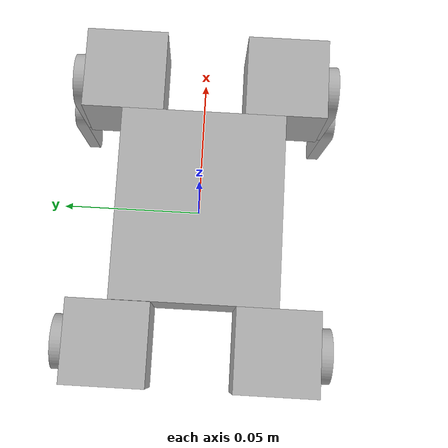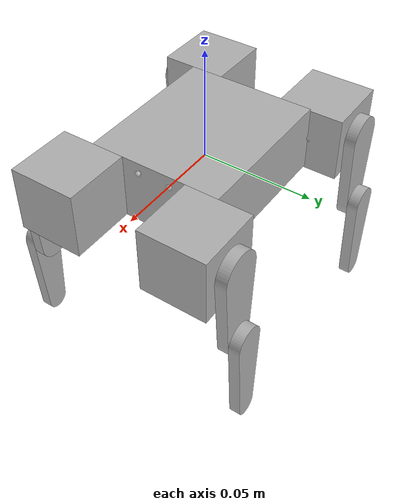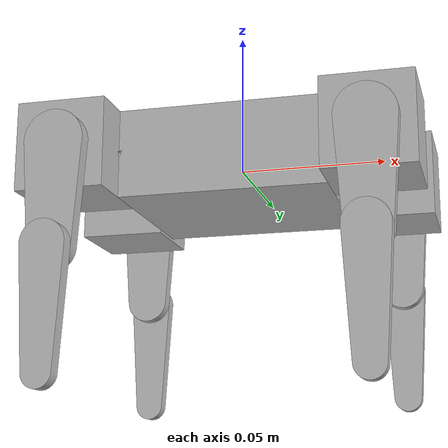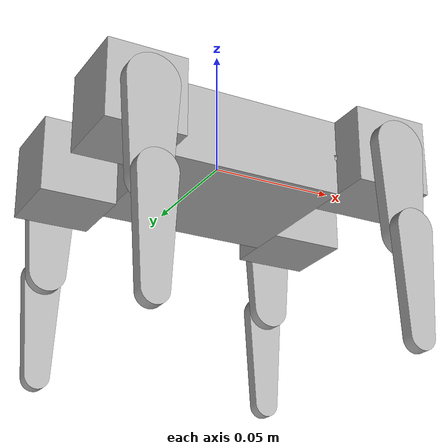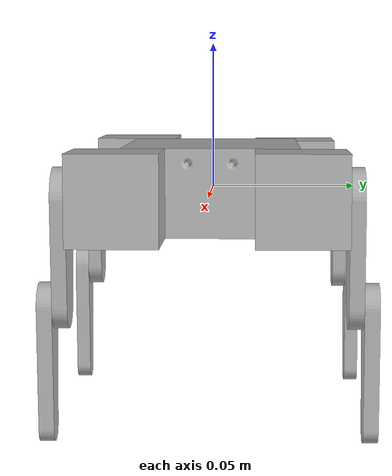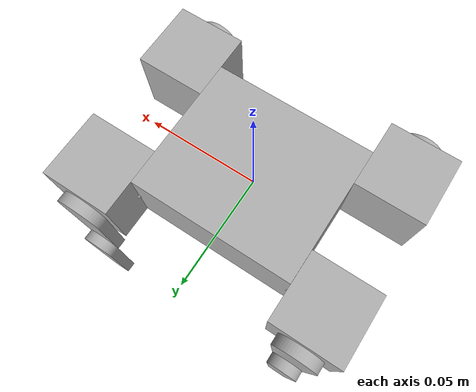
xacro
<?xml version="1.0" ?>
<robot name="q_dot_02" xmlns:xacro="http://www.ros.org/wiki/xacro">

<xacro:include filename="$(find q_dot_02_description)/urdf/materials.xacro" />
<xacro:include filename="$(find q_dot_02_description)/urdf/q_dot_02.trans" />
<xacro:include filename="$(find q_dot_02_description)/urdf/q_dot_02.gazebo" />

<link name="base_link">
  <inertial>
    <origin rpy="0 0 0" xyz="-3.749856284860472e-06 -9.02420120018054e-18 -1.093119461551725e-06"/>
    <mass value="0.9889425737724369"/>
    <inertia ixx="0.000371" ixy="-0.0" ixz="0.0" iyy="0.000478" iyz="-0.0" izz="0.0007"/>
  </inertial>
  <visual>
    <origin rpy="0 0 0" xyz="0 0 0"/>
    <geometry>
      <mesh filename="package://q_dot_02_description/meshes/base_link.stl" scale="0.001 0.001 0.001"/>
    </geometry>
    <material name="silver"/>
  </visual>
  <collision>
    <origin rpy="0 0 0" xyz="0 0 0"/>
    <geometry>
      <mesh filename="package://q_dot_02_description/meshes/base_link.stl" scale="0.001 0.001 0.001"/>
    </geometry>
  </collision>
</link>

<link name="rf_hip_link_1">
  <inertial>
    <origin rpy="0 0 0" xyz="0.015001687347942105 1.734723475976807e-17 0.0"/>
    <mass value="0.21192533849766937"/>
    <inertia ixx="1.0" ixy="0.0" ixz="0.0" iyy="1.0" iyz="0.0" izz="1.0" />
  </inertial>
  <visual>
    <origin rpy="0 0 0" xyz="-0.035 0.03 -0.0"/>
    <geometry>
      <mesh filename="package://q_dot_02_description/meshes/rf_hip_link_1.stl" scale="0.001 0.001 0.001"/>
    </geometry>
    <material name="silver"/>
  </visual>
  <collision>
    <origin rpy="0 0 0" xyz="-0.035 0.03 -0.0"/>
    <geometry>
      <mesh filename="package://q_dot_02_description/meshes/rf_hip_link_1.stl" scale="0.001 0.001 0.001"/>
    </geometry>
  </collision>
</link>

<link name="lf_hip_link_1">
  <inertial>
    <origin rpy="0 0 0" xyz="0.015001687347942098 1.734723475976807e-17 -2.6319460028976815e-18"/>
    <mass value="0.2119253384976692"/>
    <inertia ixx="1.0" ixy="0.0" ixz="0.0" iyy="1.0" iyz="0.0" izz="1.0" />
  </inertial>
  <visual>
    <origin rpy="0 0 0" xyz="-0.035 -0.03 -0.0"/>
    <geometry>
      <mesh filename="package://q_dot_02_description/meshes/lf_hip_link_1.stl" scale="0.001 0.001 0.001"/>
    </geometry>
    <material name="silver"/>
  </visual>
  <collision>
    <origin rpy="0 0 0" xyz="-0.035 -0.03 -0.0"/>
    <geometry>
      <mesh filename="package://q_dot_02_description/meshes/lf_hip_link_1.stl" scale="0.001 0.001 0.001"/>
    </geometry>
  </collision>
</link>

<link name="lh_hip_link_1">
  <inertial>
    <origin rpy="0 0 0" xyz="-0.015001687347942105 -2.42861286636753e-17 3.469446951953614e-18"/>
    <mass value="0.2119253384976694"/>
    <inertia ixx="1.0" ixy="0.0" ixz="0.0" iyy="1.0" iyz="0.0" izz="1.0" />
  </inertial>
  <visual>
    <origin rpy="0 0 0" xyz="0.035 -0.03 0.001"/>
    <geometry>
      <mesh filename="package://q_dot_02_description/meshes/lh_hip_link_1.stl" scale="0.001 0.001 0.001"/>
    </geometry>
    <material name="silver"/>
  </visual>
  <collision>
    <origin rpy="0 0 0" xyz="0.035 -0.03 0.001"/>
    <geometry>
      <mesh filename="package://q_dot_02_description/meshes/lh_hip_link_1.stl" scale="0.001 0.001 0.001"/>
    </geometry>
  </collision>
</link>

<link name="rh_hip_link_1">
  <inertial>
    <origin rpy="0 0 0" xyz="-0.015001687347942105 -1.734723475976807e-17 0.0"/>
    <mass value="0.21192533849766917"/>
    <inertia ixx="1.0" ixy="0.0" ixz="0.0" iyy="1.0" iyz="0.0" izz="1.0" />
  </inertial>
  <visual>
    <origin rpy="0 0 0" xyz="0.035 0.03 -0.0"/>
    <geometry>
      <mesh filename="package://q_dot_02_description/meshes/rh_hip_link_1.stl" scale="0.001 0.001 0.001"/>
    </geometry>
    <material name="silver"/>
  </visual>
  <collision>
    <origin rpy="0 0 0" xyz="0.035 0.03 -0.0"/>
    <geometry>
      <mesh filename="package://q_dot_02_description/meshes/rh_hip_link_1.stl" scale="0.001 0.001 0.001"/>
    </geometry>
  </collision>
</link>

<link name="rf_upper_leg_link_1">
  <inertial>
    <origin rpy="0 0 0" xyz="0.0 -0.0025000000000000022 -0.015060554087736015"/>
    <mass value="0.03370014250693511"/>
    <inertia ixx="1.0" ixy="0.0" ixz="0.0" iyy="1.0" iyz="0.0" izz="1.0" />
  </inertial>
  <visual>
    <origin rpy="0 0 0" xyz="-0.05 0.045 -0.0"/>
    <geometry>
      <mesh filename="package://q_dot_02_description/meshes/rf_upper_leg_link_1.stl" scale="0.001 0.001 0.001"/>
    </geometry>
    <material name="silver"/>
  </visual>
  <collision>
    <origin rpy="0 0 0" xyz="-0.05 0.045 -0.0"/>
    <geometry>
      <mesh filename="package://q_dot_02_description/meshes/rf_upper_leg_link_1.stl" scale="0.001 0.001 0.001"/>
    </geometry>
  </collision>
</link>

<link name="rf_lower_leg_link_1">
  <inertial>
    <origin rpy="0 0 0" xyz="0.0 -0.0024999999999999953 -0.01706099375174222"/>
    <mass value="0.02467231228210367"/>
    <inertia ixx="1.0" ixy="0.0" ixz="0.0" iyy="1.0" iyz="0.0" izz="1.0" />
  </inertial>
  <visual>
    <origin rpy="0 0 0" xyz="-0.05 0.05 0.035"/>
    <geometry>
      <mesh filename="package://q_dot_02_description/meshes/rf_lower_leg_link_1.stl" scale="0.001 0.001 0.001"/>
    </geometry>
    <material name="silver"/>
  </visual>
  <collision>
    <origin rpy="0 0 0" xyz="-0.05 0.05 0.035"/>
    <geometry>
      <mesh filename="package://q_dot_02_description/meshes/rf_lower_leg_link_1.stl" scale="0.001 0.001 0.001"/>
    </geometry>
  </collision>
</link>

<!-- RF FOOT -->
<link name="rf_foot_link" />
<!-- RF FOOT -->

<link name="lf_upper_leg_link_1">
  <inertial>
    <origin rpy="0 0 0" xyz="0.0 0.002500000000000009 -0.015060554087736"/>
    <mass value="0.033700142506935094"/>
    <inertia ixx="1.0" ixy="0.0" ixz="0.0" iyy="1.0" iyz="0.0" izz="1.0" />
  </inertial>
  <visual>
    <origin rpy="0 0 0" xyz="-0.05 -0.045 -0.0"/>
    <geometry>
      <mesh filename="package://q_dot_02_description/meshes/lf_upper_leg_link_1.stl" scale="0.001 0.001 0.001"/>
    </geometry>
    <material name="silver"/>
  </visual>
  <collision>
    <origin rpy="0 0 0" xyz="-0.05 -0.045 -0.0"/>
    <geometry>
      <mesh filename="package://q_dot_02_description/meshes/lf_upper_leg_link_1.stl" scale="0.001 0.001 0.001"/>
    </geometry>
  </collision>
</link>

<link name="lf_lower_leg_link_1">
  <inertial>
    <origin rpy="0 0 0" xyz="-2.0816681711721685e-17 0.002500000000000009 -0.017060993751742214"/>
    <mass value="0.024672312282103682"/>
    <inertia ixx="1.0" ixy="0.0" ixz="0.0" iyy="1.0" iyz="0.0" izz="1.0" />
  </inertial>
  <visual>
    <origin rpy="0 0 0" xyz="-0.05 -0.05 0.035"/>
    <geometry>
      <mesh filename="package://q_dot_02_description/meshes/lf_lower_leg_link_1.stl" scale="0.001 0.001 0.001"/>
    </geometry>
    <material name="silver"/>
  </visual>
  <collision>
    <origin rpy="0 0 0" xyz="-0.05 -0.05 0.035"/>
    <geometry>
      <mesh filename="package://q_dot_02_description/meshes/lf_lower_leg_link_1.stl" scale="0.001 0.001 0.001"/>
    </geometry>
  </collision>
</link>

<!-- LF FOOT -->
<link name="lf_foot_link" />
<!-- LF FOOT -->

<link name="lh_upper_leg_link_1">
  <inertial>
    <origin rpy="0 0 0" xyz="-3.469446951953614e-17 0.0024999999999999953 -0.015060554087736003"/>
    <mass value="0.0337001425069351"/>
    <inertia ixx="1.0" ixy="0.0" ixz="0.0" iyy="1.0" iyz="0.0" izz="1.0" />
  </inertial>
  <visual>
    <origin rpy="0 0 0" xyz="0.05 -0.045 0.001"/>
    <geometry>
      <mesh filename="package://q_dot_02_description/meshes/lh_upper_leg_link_1.stl" scale="0.001 0.001 0.001"/>
    </geometry>
    <material name="silver"/>
  </visual>
  <collision>
    <origin rpy="0 0 0" xyz="0.05 -0.045 0.001"/>
    <geometry>
      <mesh filename="package://q_dot_02_description/meshes/lh_upper_leg_link_1.stl" scale="0.001 0.001 0.001"/>
    </geometry>
  </collision>
</link>

<link name="lh_lower_leg_link_1">
  <inertial>
    <origin rpy="0 0 0" xyz="-2.0816681711721685e-17 0.0024999999999999883 -0.0170609937517422"/>
    <mass value="0.02467231228210367"/>
    <inertia ixx="1.0" ixy="0.0" ixz="0.0" iyy="1.0" iyz="0.0" izz="1.0" />
  </inertial>
  <visual>
    <origin rpy="0 0 0" xyz="0.05 -0.05 0.036"/>
    <geometry>
      <mesh filename="package://q_dot_02_description/meshes/lh_lower_leg_link_1.stl" scale="0.001 0.001 0.001"/>
    </geometry>
    <material name="silver"/>
  </visual>
  <collision>
    <origin rpy="0 0 0" xyz="0.05 -0.05 0.036"/>
    <geometry>
      <mesh filename="package://q_dot_02_description/meshes/lh_lower_leg_link_1.stl" scale="0.001 0.001 0.001"/>
    </geometry>
  </collision>
</link>

<!-- LH FOOT -->
<link name="lh_foot_link" />
<!-- LH FOOT -->

<link name="rh_upper_leg_link_1">
  <inertial>
    <origin rpy="0 0 0" xyz="1.3877787807814457e-17 -0.002500000000000009 -0.015060554087736015"/>
    <mass value="0.03370014250693509"/>
    <inertia ixx="1.0" ixy="0.0" ixz="0.0" iyy="1.0" iyz="0.0" izz="1.0" />
  </inertial>
  <visual>
    <origin rpy="0 0 0" xyz="0.05 0.045 -0.0"/>
    <geometry>
      <mesh filename="package://q_dot_02_description/meshes/rh_upper_leg_link_1.stl" scale="0.001 0.001 0.001"/>
    </geometry>
    <material name="silver"/>
  </visual>
  <collision>
    <origin rpy="0 0 0" xyz="0.05 0.045 -0.0"/>
    <geometry>
      <mesh filename="package://q_dot_02_description/meshes/rh_upper_leg_link_1.stl" scale="0.001 0.001 0.001"/>
    </geometry>
  </collision>
</link>

<link name="rh_lower_leg_link_1">
  <inertial>
    <origin rpy="0 0 0" xyz="2.7755575615628914e-17 -0.002500000000000009 -0.01706099375174224"/>
    <mass value="0.024672312282103703"/>
    <inertia ixx="1.0" ixy="0.0" ixz="0.0" iyy="1.0" iyz="0.0" izz="1.0" />
  </inertial>
  <visual>
    <origin rpy="0 0 0" xyz="0.05 0.05 0.035"/>
    <geometry>
      <mesh filename="package://q_dot_02_description/meshes/rh_lower_leg_link_1.stl" scale="0.001 0.001 0.001"/>
    </geometry>
    <material name="silver"/>
  </visual>
  <collision>
    <origin rpy="0 0 0" xyz="0.05 0.05 0.035"/>
    <geometry>
      <mesh filename="package://q_dot_02_description/meshes/rh_lower_leg_link_1.stl" scale="0.001 0.001 0.001"/>
    </geometry>
  </collision>
</link>

<!-- RH FOOT -->
<link name="rh_foot_link" />
<!-- RH FOOT -->

<!-- JOINTS -->

<joint name="rf_hip_joint" type="continuous">
  <origin rpy="0 0 0" xyz="0.035 -0.03 0.0"/>
  <parent link="base_link"/>
  <child link="rf_hip_link_1"/>
  <axis xyz="1.0 0.0 0.0"/>
</joint>

<joint name="lf_hip_joint" type="continuous">
  <origin rpy="0 0 0" xyz="0.035 0.03 0.0"/>
  <parent link="base_link"/>
  <child link="lf_hip_link_1"/>
  <axis xyz="1.0 0.0 0.0"/>
</joint>

<joint name="lh_hip_joint" type="continuous">
  <origin rpy="0 0 0" xyz="-0.035 0.03 -0.001"/>
  <parent link="base_link"/>
  <child link="lh_hip_link_1"/>
  <axis xyz="1.0 0.0 0.0"/>
</joint>

<joint name="rh_hip_joint" type="continuous">
  <origin rpy="0 0 0" xyz="-0.035 -0.03 0.0"/>
  <parent link="base_link"/>
  <child link="rh_hip_link_1"/>
  <axis xyz="1.0 0.0 0.0"/>
</joint>

<joint name="rf_upper_joint" type="continuous">
  <origin rpy="0 0 0" xyz="0.015 -0.015 0.0"/>
  <parent link="rf_hip_link_1"/>
  <child link="rf_upper_leg_link_1"/>
  <axis xyz="0.0 1.0 0.0"/>
</joint>

<joint name="rf_lower_joint" type="continuous">
  <origin rpy="0 0 0" xyz="0.0 -0.005 -0.035"/>
  <parent link="rf_upper_leg_link_1"/>
  <child link="rf_lower_leg_link_1"/>
  <axis xyz="0.0 1.0 0.0"/>
</joint>

<!-- RF JOINT -->
<joint name="rf_foot_joint" type="fixed">
  <origin rpy="0 0 0" xyz="0.0 0.0 -0.045"/>
  <parent link="rf_lower_leg_link_1"/>
  <child link="rf_foot_link"/>
</joint>
<!-- RF JOINT -->

<joint name="lf_upper_joint" type="continuous">
  <origin rpy="0 0 0" xyz="0.015 0.015 0.0"/>
  <parent link="lf_hip_link_1"/>
  <child link="lf_upper_leg_link_1"/>
  <axis xyz="-0.0 1.0 0.0"/>
</joint>

<joint name="lf_lower_joint" type="continuous">
  <origin rpy="0 0 0" xyz="0.0 0.005 -0.035"/>
  <parent link="lf_upper_leg_link_1"/>
  <child link="lf_lower_leg_link_1"/>
  <axis xyz="-0.0 1.0 0.0"/>
</joint>

<!-- LF JOINT -->
<joint name="lf_foot_joint" type="fixed">
  <origin rpy="0 0 0" xyz="0.0 0.0 -0.045"/>
  <parent link="lf_lower_leg_link_1"/>
  <child link="lf_foot_link"/>
</joint>
<!-- LF JOINT -->

<joint name="lh_upper_joint" type="continuous">
  <origin rpy="0 0 0" xyz="-0.015 0.015 0.0"/>
  <parent link="lh_hip_link_1"/>
  <child link="lh_upper_leg_link_1"/>
  <axis xyz="-0.0 1.0 0.0"/>
</joint>

<joint name="lh_lower_joint" type="continuous">
  <origin rpy="0 0 0" xyz="0.0 0.005 -0.035"/>
  <parent link="lh_upper_leg_link_1"/>
  <child link="lh_lower_leg_link_1"/>
  <axis xyz="-0.0 1.0 0.0"/>
</joint>

<!-- LH JOINT -->
<joint name="lh_foot_joint" type="fixed">
  <origin rpy="0 0 0" xyz="0.0 0.0 -0.045"/>
  <parent link="lh_lower_leg_link_1"/>
  <child link="lh_foot_link"/>
</joint>
<!-- LH JOINT -->

<joint name="rh_upper_joint" type="continuous">
  <origin rpy="0 0 0" xyz="-0.015 -0.015 0.0"/>
  <parent link="rh_hip_link_1"/>
  <child link="rh_upper_leg_link_1"/>
  <axis xyz="0.0 1.0 0.0"/>
</joint>

<joint name="rh_lower_joint" type="continuous">
  <origin rpy="0 0 0" xyz="0.0 -0.005 -0.035"/>
  <parent link="rh_upper_leg_link_1"/>
  <child link="rh_lower_leg_link_1"/>
  <axis xyz="0.0 1.0 0.0"/>
</joint>

<!-- RH JOINT -->
<joint name="rh_foot_joint" type="fixed">
  <origin rpy="0 0 0" xyz="0.0 0.0 -0.045"/>
  <parent link="rh_lower_leg_link_1"/>
  <child link="rh_foot_link"/>
</joint>
<!-- RH JOINT -->

</robot>

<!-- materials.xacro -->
<robot name="q_dot_02" xmlns:xacro="http://www.ros.org/wiki/xacro" >

<material name="silver">
  <color rgba="0.700 0.700 0.700 1.000"/>
</material>

</robot>

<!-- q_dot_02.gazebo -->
<robot name="q_dot_02" xmlns:xacro="http://www.ros.org/wiki/xacro" >

<xacro:property name="body_color" value="Gazebo/Silver" />

<gazebo>
  <plugin filename="libgazebo_ros_control.so" name="gazebo_ros_control">
    <robotNamespace>/q_dot_02</robotNamespace>
    <robotSimType>gazebo_ros_control/DefaultRobotHWSim</robotSimType>
    <legacyModeNS>true</legacyModeNS>
  </plugin>
</gazebo>

<gazebo reference="base_link">
  <material>${body_color}</material>
  <mu1>0.2</mu1>
  <mu2>0.2</mu2>
  <selfCollide>true</selfCollide>
  <gravity>true</gravity>
</gazebo>

<gazebo reference="rf_hip_link_1">
  <material>${body_color}</material>
  <mu1>0.2</mu1>
  <mu2>0.2</mu2>
  <selfCollide>true</selfCollide>
</gazebo>

<gazebo reference="lf_hip_link_1">
  <material>${body_color}</material>
  <mu1>0.2</mu1>
  <mu2>0.2</mu2>
  <selfCollide>true</selfCollide>
</gazebo>

<gazebo reference="lh_hip_link_1">
  <material>${body_color}</material>
  <mu1>0.2</mu1>
  <mu2>0.2</mu2>
  <selfCollide>true</selfCollide>
</gazebo>

<gazebo reference="rh_hip_link_1">
  <material>${body_color}</material>
  <mu1>0.2</mu1>
  <mu2>0.2</mu2>
  <selfCollide>true</selfCollide>
</gazebo>

<gazebo reference="rf_upper_leg_link_1">
  <material>${body_color}</material>
  <mu1>0.2</mu1>
  <mu2>0.2</mu2>
  <selfCollide>true</selfCollide>
</gazebo>

<gazebo reference="rf_lower_leg_link_1">
  <material>${body_color}</material>
  <mu1>0.2</mu1>
  <mu2>0.2</mu2>
  <selfCollide>true</selfCollide>
</gazebo>

<gazebo reference="lf_upper_leg_link_1">
  <material>${body_color}</material>
  <mu1>0.2</mu1>
  <mu2>0.2</mu2>
  <selfCollide>true</selfCollide>
</gazebo>

<gazebo reference="lf_lower_leg_link_1">
  <material>${body_color}</material>
  <mu1>0.2</mu1>
  <mu2>0.2</mu2>
  <selfCollide>true</selfCollide>
</gazebo>

<gazebo reference="lh_upper_leg_link_1">
  <material>${body_color}</material>
  <mu1>0.2</mu1>
  <mu2>0.2</mu2>
  <selfCollide>true</selfCollide>
</gazebo>

<gazebo reference="lh_lower_leg_link_1">
  <material>${body_color}</material>
  <mu1>0.2</mu1>
  <mu2>0.2</mu2>
  <selfCollide>true</selfCollide>
</gazebo>

<gazebo reference="rh_upper_leg_link_1">
  <material>${body_color}</material>
  <mu1>0.2</mu1>
  <mu2>0.2</mu2>
  <selfCollide>true</selfCollide>
</gazebo>

<gazebo reference="rh_lower_leg_link_1">
  <material>${body_color}</material>
  <mu1>0.2</mu1>
  <mu2>0.2</mu2>
  <selfCollide>true</selfCollide>
</gazebo>

</robot>
